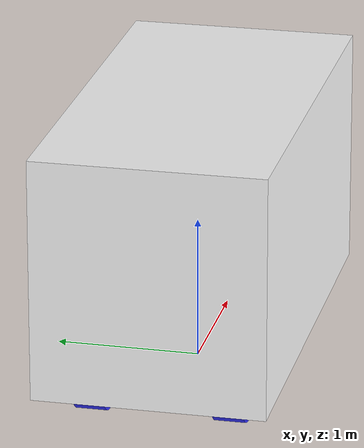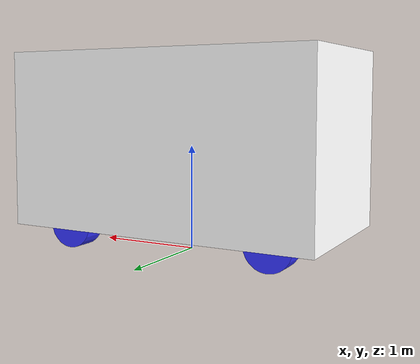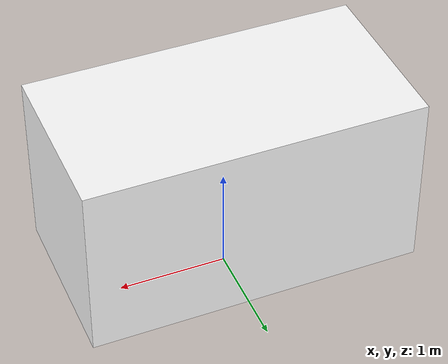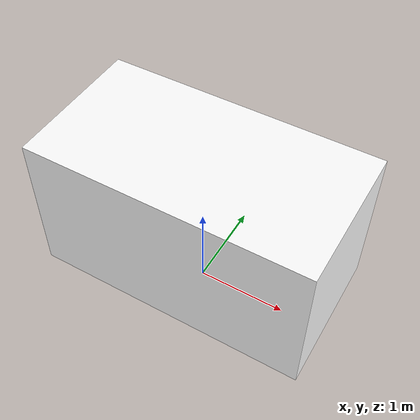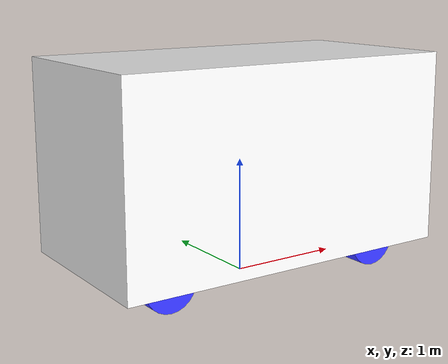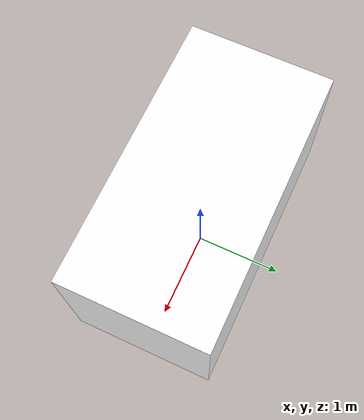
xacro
<?xml version="1.0"?>
<robot xmlns:xacro="http://www.ros.org/wiki/xacro" name="ros2_sim_sandbox">
    <!-- Macros -->
    <xacro:include filename="colors.xacro" />
    <xacro:include filename="inertial_macros.xacro" />
    <xacro:macro name="wheel" params="name">
        <link name="${name}">
            <visual>
                <geometry> <cylinder length="0.213" radius="0.228" /> </geometry>
                <material name="blue"/>
            </visual>
            <collision>
                <geometry> <cylinder length="0.213" radius="0.228" /> </geometry>
            </collision>
            <xacro:inertial_cylinder mass="20" length="0.213" radius="0.228">
                <origin xyz="0 0 0" rpy="0 0 0"/>
            </xacro:inertial_cylinder>
        </link>
        <gazebo reference="${name}"> <material>Gazebo/Blue</material> </gazebo>
        <xacro:gazebo_friction reference="${name}"/>
    </xacro:macro>

    <!-- Constants for robot dimensions -->
    <xacro:property name="chassis_length" value="3.055" />
    <xacro:property name="chassis_width" value="1.588" />
    <xacro:property name="chassis_height" value="1.905" />
    <xacro:property name="x_wheel_separation" value="2.082" />
    <xacro:property name="y_wheel_separation" value="0.94833" />
    <xacro:property name="z_base_to_wheel" value="-0.72" />
    <xacro:property name="z_cog_offset" value="-0.2945" />
    <xacro:property name="max_steer_angle_central" value="0.2618" />

    <!-- BASE_FOOTPRINT- the origin when spawning in Gazebo -->
    <link name="base_footprint"/>
    <joint name="base_footprint_joint" type="fixed">
        <parent link="base_footprint"/>
        <child link="base_link"/>
        <origin xyz="0 0 ${chassis_height/2.0}" rpy="0 0 0"/>
    </joint>

    <!-- BASE_LINK- geometric center of the robot's body -->
    <link name="base_link">
    </link>

    <!-- CHASSIS -->
    <link name="chassis">
        <visual>
            <geometry>
                <box size="${chassis_length} ${chassis_width} ${chassis_height-0.228}"/>
            </geometry>
            <origin xyz="0 0 0.114"/>
            <material name="white"/>
        </visual>
        <collision>
            <geometry>
                <box size="${chassis_length} ${chassis_width} ${chassis_height-0.55}"/>
            </geometry>
            <origin xyz="0 0 0.20"/>
        </collision>
        <xacro:inertial_box mass="500" x="${chassis_length}" y="${chassis_width}" z="${chassis_height}">
            <origin xyz="0 0 ${z_cog_offset}" rpy="0 0 0"/>
        </xacro:inertial_box>
        <gazebo reference="chassis">
            <material>Gazebo/White</material>
        </gazebo>
    </link>
    <joint name="chassis_joint" type="fixed">
        <parent link="base_link"/>
        <child link="chassis"/>
        <origin xyz="0 0 0"/>
    </joint>

    <!-- LEFT_BACK_WHEEL -->
    <xacro:wheel name="left_back_wheel"/>
    <joint name="left_back_wheel_joint" type="continuous">
        <parent link="chassis"/>
        <child link="left_back_wheel"/>
        <origin xyz="-${x_wheel_separation/2.0} ${y_wheel_separation/2.0} ${z_base_to_wheel}" rpy="-${pi/2} 0 0"/>
        <axis xyz="0 0 1"/>
        <dynamics damping="0.2" friction="0.5"/>
        <limit effort="200.0" velocity="25.0"/>
    </joint>

    <!-- RIGHT BACK WHEEL -->
    <xacro:wheel name="right_back_wheel"/>
    <joint name="right_back_wheel_joint" type="continuous">
        <parent link="chassis"/>
        <child link="right_back_wheel"/>
        <origin xyz="-${x_wheel_separation/2.0} -${y_wheel_separation/2.0} ${z_base_to_wheel}" rpy="-${pi/2} 0 0"/>
        <axis xyz="0 0 1"/>
        <dynamics damping="0.2" friction="0.5"/>
        <limit effort="200.0" velocity="25.0"/>
        <mimic joint="left_back_wheel_joint" multiplier="1.0" offset="0.0"/>
    </joint>

    <!-- LEFT STEERING LINK -->
    <link name="front_left_steering_link">
        <xacro:virtual/>
        <xacro:inertial_steering_link/>
    </link>
    <joint name="front_left_steering_joint" type="revolute">
        <parent link="chassis"/>
        <child link="front_left_steering_link"/>
        <origin xyz="${x_wheel_separation/2.0} ${y_wheel_separation/2.0} ${z_base_to_wheel}" rpy="${pi/2} 0 0" />
        <axis   xyz="0 1 0" />
        <limit  lower="-${max_steer_angle_central}"  upper="${max_steer_angle_central}"  effort="50.0"  velocity="5" />
        <dynamics damping="0.2"/>
    </joint>

    <!-- LEFT FRONT WHEEL -->
    <xacro:wheel name="left_front_wheel"/>
    <joint name="left_front_wheel_joint" type="continuous">
        <parent link="front_left_steering_link"/>
        <child link="left_front_wheel"/>
        <origin xyz="0 0 0" rpy="0 0 0" />
        <axis   xyz="0 0 1" />
    </joint>

    <!-- RIGHT STEERING LINK -->
    <link name="front_right_steering_link">
        <xacro:virtual/>
        <xacro:inertial_steering_link/>
    </link>
    <joint name="front_right_steering_joint" type="revolute">
        <parent link="chassis"/>
        <child link="front_right_steering_link"/>
        <origin xyz="${x_wheel_separation/2.0} -${y_wheel_separation/2.0} ${z_base_to_wheel}" rpy="${pi/2} 0 0" />
        <axis   xyz="0 1 0" />
        <limit  lower="-${max_steer_angle_central}"  upper="${max_steer_angle_central}"  effort="50.0"  velocity="5" />
        <dynamics damping="0.2"/>
        <mimic joint="front_left_steering_joint" multiplier="1.0" offset="0.0"/>
    </joint>

    <!-- RIGHT FRONT WHEEL -->
     <xacro:wheel name="right_front_wheel"/>
    <joint name="right_front_wheel_joint" type="continuous">
        <parent link="front_right_steering_link"/>
        <child link="right_front_wheel"/>
        <origin xyz="0 0 0" rpy="0 0 0" />
        <axis   xyz="0 0 -1" />
    </joint>

</robot>

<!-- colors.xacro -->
<robot xmlns:xacro="http://www.ros.org/wiki/xacro">

    <material name="white">
        <color rgba="1 1 1 1"/>
    </material>

    <material name="orange">
        <color rgba="1 0.3 0.1 1"/>
    </material>

    <material name="blue">
        <color rgba="0.2 0.2 1 1"/>
    </material>

    <material name="black">
        <color rgba="0 0 0 1"/>
    </material>

    <material name="dark_grey">
        <color rgba="0.1 0.1 0.1 1.0"/>
    </material>
</robot>

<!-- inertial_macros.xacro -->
<robot xmlns:xacro="http://www.ros.org/wiki/xacro" >

    <!-- Specify some standard inertial calculations https://en.wikipedia.org/wiki/List_of_moments_of_inertia -->
    <!-- These make use of xacro's mathematical functionality -->

    <xacro:macro name="inertial_sphere" params="mass radius *origin">
        <inertial>
            <xacro:insert_block name="origin"/>
            <mass value="${mass}" />
            <inertia ixx="${(2/5) * mass * (radius*radius)}" ixy="0.0" ixz="0.0"
                    iyy="${(2/5) * mass * (radius*radius)}" iyz="0.0"
                    izz="${(2/5) * mass * (radius*radius)}" />
        </inertial>
    </xacro:macro>

    <xacro:macro name="inertial_box" params="mass x y z *origin">
        <inertial>
            <xacro:insert_block name="origin"/>
            <mass value="${mass}" />
            <inertia ixx="${(1/12) * mass * (y*y+z*z)}" ixy="0.0" ixz="0.0"
                    iyy="${(1/12) * mass * (x*x+z*z)}" iyz="0.0"
                    izz="${(1/12) * mass * (x*x+y*y)}" />
        </inertial>
    </xacro:macro>

    <xacro:macro name="inertial_cylinder" params="mass length radius *origin">
        <inertial>
            <xacro:insert_block name="origin"/>
            <mass value="${mass}" />
            <inertia ixx="${(1/12) * mass * (3*radius*radius + length*length)}" ixy="0.0" ixz="0.0"
                    iyy="${(1/12) * mass * (3*radius*radius + length*length)}" iyz="0.0"
                    izz="${(1/2) * mass * (radius*radius)}" />
        </inertial>
    </xacro:macro>

    <xacro:macro name="inertial_steering_link">
        <inertial>
        <origin xyz="0 0 0" rpy="0 0 0" />
        <mass value="5.0" />
        <inertia
            ixx="0.05" ixy="0" ixz="0"
            iyy="0.05" iyz="0" izz="0.05" />
        </inertial>
    </xacro:macro>

    <!-- EXTRA MACRO -->
     <xacro:macro name="gazebo_friction" params="reference">
        <gazebo reference="${reference}">
            <mu1 value="1.0"/>
            <mu2 value="0.5"/>
            <kp value="10000000.0" />
            <kd value="1.0" />
            <fdir1 value="1 0 0"/>
        </gazebo>
    </xacro:macro>

    <xacro:macro name="virtual">
        <visual>
        <origin xyz="0 0 0" rpy="0 0 0"/>
        <geometry>
            <cylinder length="0.01" radius="0.01"/>
        </geometry>
        <material name="invisible">
            <color rgba="0.0 0.0 0.0 0.0"/>
        </material>
        </visual>
    </xacro:macro>
</robot>
